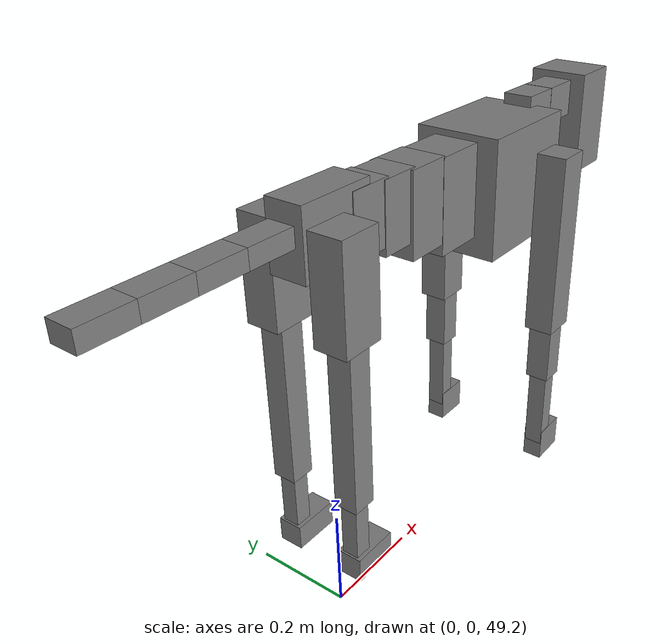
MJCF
<mujoco model="dog">

    <default>
        <joint armature="0.02" stiffness="1" damping="0.2" limited="true"/>
        <geom condim="3" friction="1 0.05 0.05" margin="0.01"/>
        <motor ctrllimited="true" ctrlrange="-1.0 1.0" forcelimited="true" gear="50"/>
    </default>

    <compiler inertiafromgeom="true" angle="radian"/>

    <option timestep="0.016" iterations="50" tolerance="1e-10" solver="Newton" jacobian="dense" cone="pyramidal"/>

    <size nconmax="20000" njmax="60000" nstack="5000000"/>
    <visual>
        <map force="0.1" zfar="30"/>
        <rgba haze="0.15 0.25 0.35 1"/>
        <quality shadowsize="2048"/>
        <global offwidth="800" offheight="800"/>
    </visual>

    <asset>
        <texture type="skybox" builtin="gradient" rgb1="0.3 0.5 0.7" rgb2="0 0 0" width="512" height="512"/>
        <texture name="texplane" type="2d" builtin="checker" rgb1=".2 .3 .4" rgb2=".1 0.15 0.2" width="512" height="512"
                 mark="cross" markrgb=".8 .8 .8"/>
        <texture name="texgeom" type="cube" builtin="flat" mark="cross" width="127" height="1278" rgb1="0.8 0.6 0.4"
                 rgb2="0.8 0.6 0.4" markrgb="1 1 1" random="0.01"/>

        <material name="matplane" reflectance="0.3" texture="texplane" texrepeat="1 1" texuniform="true"/>
        <material name="matgeom" texture="texgeom" texuniform="true" rgba="0.8 0.6 .4 1"/>
    </asset>

    <worldbody>
        <geom name="floor" pos="0 0 0" size="0 0 .25" type="plane" material="matplane" condim="3"/>

        <light directional="false" diffuse=".2 .2 .2" specular="0 0 0" pos="0 0 5" dir="0 0 -1" castshadow="false"/>
        <light mode="targetbodycom" target="torso" directional="false" diffuse=".8 .8 .8" specular="0.3 0.3 0.3"
               pos="0 0 4.0" dir="0 0 -1"/>

        <body name="root" pos="0 0 50">
            <freejoint name="root_1"/>
            <geom type="box" pos="0 0 -0.02" size="0.0774  0.0358  0.063" density="2030"/>

            <body name="spine1" pos="0.054 0 0">
                <joint name="spine1_y" axis="0 1 0" range="0 0.7" limited="true"/>
                <geom type="box" pos="0.02375 0 -0.03" size="0.04375  0.0375  0.05985" density="2030"/>

                <body name="spine2" pos="0.0612 0 0">
                    <joint name="spine2_y" axis="0 1 0" range="-0.15 0.15" limited="true"/>
                    <geom type="box" pos="0.03555  0  -0.04" size="0.04055  0.039  0.06615" density="2030"/>

                    <body name="spine3" pos="0.0730 0 0">
                        <joint name="spine3_y" axis="0 1 0" range="-0.15 0.15" limited="true"/>
                        <geom type="box" pos="0.03555  0  -0.057" size="0.04555  0.0445  0.081" density="2030"/>

                        <body name="spine4" pos="0.0780 0 0">
                            <joint name="spine4_y" axis="0 1 0" range="-0.15 0.15" limited="true"/>
                            <geom type="box" pos="0.05265  0  -0.07" size="0.05265  0.045  0.09135" density="2030"/>

                            <body name="torso" pos="0.1082 0 0">
                                <joint name="torso_y" axis="0 1 0" range="-0.15 0.15" limited="true"/>
                                <geom type="box" pos="0.11925  0  -0.085" size="0.11925  0.085  0.11745"
                                      density="2030"/>

                                <body name="neck1" pos="0.2160  0   0.0180">
                                    <joint name="neck1_y" axis="0 1 0" range="-1.2  -1" limited="true"/>
                                    <geom type="box" pos="0.0423  0  0" size="0.0423  0.03  0.036" density="2325"/>

                                    <body name="neck2" pos="0.0853  0  0">
                                        <joint name="neck2_y" axis="0 1 0" range="0.1  0" limited="true"/>
                                        <geom type="box" pos="0.0423  0  0" size="0.0423  0.03  0.036" density="2325"/>

                                        <body name="head" pos="0.0853  0  0">
                                            <joint name="head_y" axis="0 1 0" range="-0.3  -0.2" limited="true"/>
                                            <geom type="box" pos="0.0531  0  -0.055" size="0.0531  0.06  0.1044"
                                                  density="4030"/>

                                        </body>
                                    </body>
                                </body>

                                <body name="front_shoulder" pos="0.156  0   -0.0480">
                                    <joint name="front_shoulder_y" axis="0 1 0" range="-1 1.5" limited="true"/>
                                    <geom type="box" pos="0 0.13 -0.1583" size="0.0347  0.0297  0.1850" density="1158"/>
                                    <geom type="box" pos="0 -0.13 -0.1583" size="0.0347  0.0297  0.1850"
                                          density="1158"/>

                                    <body name="front_elbow" pos="0  0  -0.3166">
                                        <joint name="front_elbow_y" axis="0 1 0" range="-2 0" limited="true"/>
                                        <geom type="box" pos="0 0.13 -0.0732" size="0.0236  0.0242  0.0732"
                                              density="1081"/>
                                        <geom type="box" pos="0 -0.13 -0.0732" size="0.0236  0.0242  0.0732"
                                              density="1081"/>

                                        <body name="front_wrist" pos="0  0  -0.1464">
                                            <joint name="front_wrist_y" axis="0 1 0" range="-0.2 0" limited="true"/>
                                            <geom type="box" pos="0 0.13 -0.0781" size="0.0171  0.0189  0.0913"
                                                  density="1664"/>
                                            <geom type="box" pos="0 -0.13 -0.0781" size="0.0171  0.0189  0.0913"
                                                  density="1664"/>

                                            <body name="front_finger_end" pos="0  0  -0.1562">
                                                <joint name="front_finger_y" axis="0 1 0" range="-0.4 1"
                                                       limited="true"/>
                                                <geom type="box" pos="0.0200  0.13  -0.0182"
                                                      size="0.0367  0.0200  0.0332" density="1515"/>
                                                <geom type="box" pos="0.0200  -0.13  -0.0182"
                                                      size="0.0367  0.0200  0.0332" density="1515"/>

                                            </body>

                                        </body>
                                    </body>
                                </body>

                            </body>
                        </body>
                    </body>
                </body>
            </body>

            <body name="back_hip" pos="-0.03 0 -0.018">
                <joint name="back_hip_y" axis="0 1 0" range="-1.5 0.3" limited="true"/>
                <geom type="box" pos="0 0.07 -0.0750" size="0.0415  0.0325  0.0978" density="1154"/>
                <geom type="box" pos="0 -0.07 -0.0750" size="0.0415  0.0325  0.0978" density="1154"/>

                <body name="back_knee" pos="0  0  -0.1499">
                    <joint name="back_knee_y" axis="0 1 0" range="0 2.8" limited="true"/>
                    <geom type="box" pos="0 0.07 -0.1603" size="0.0233  0.0230  0.1759" density="1227"/>
                    <geom type="box" pos="0 -0.07 -0.1603" size="0.0233  0.0230  0.1759" density="1227"/>

                    <body name="back_ankle" pos="0  0  -0.3206">
                        <joint name="back_ankle_y" axis="0 1 0" range="-2.2 0" limited="true"/>
                        <geom type="box" pos="0 0.07 -0.0685" size="0.0163  0.0163  0.0798" density="1284"/>
                        <geom type="box" pos="0 -0.07 -0.0685" size="0.0163  0.0163  0.0798" density="1284"/>

                        <body name="back_toe_end" pos="0  0  -0.1371">
                            <joint name="back_toe_y" axis="0 1 0" range="-0.4 1" limited="true"/>
                            <geom type="box" pos="0.0242  0.07  -0.0089" size="0.0443  0.0242  0.0239" density="1515"/>
                            <geom type="box" pos="0.0242  -0.07  -0.0089" size="0.0443  0.0242  0.0239" density="1515"/>

                        </body>
                    </body>
                </body>
            </body>

            <body name="tail1" pos="-0.074 0 -0.006">
                <joint name="tail1_y" axis="0 1 0" range="-0.2 0.2" limited="true"/>
                <geom type="box" pos="-0.0536  0  0" size="0.045  0.025  0.0175" density="1587"/>

                <body name="tail2" pos="-0.09 0 0">
                    <joint name="tail2_y" axis="0 1 0" range="-0.2 0.2" limited="true"/>
                    <geom type="box" pos="-0.0536  0  0" size="0.045  0.025  0.0175" density="1587"/>

                    <body name="tail3" pos="-0.09 0 0">
                        <joint name="tail3_y" axis="0 1 0" range="-0.2 0.2" limited="true"/>
                        <geom type="box" pos="-0.0536  0  0" size="0.045  0.025  0.0175" density="1587"/>

                        <body name="tail4" pos="-0.09 0 0">
                            <joint name="tail4_y" axis="0 1 0" range="-0.2 0.2" limited="true"/>
                            <geom type="box" pos="-0.0536  0  0" size="0.045  0.025  0.0175" density="1587"/>

                        </body>
                    </body>
                </body>
            </body>
        </body>
    </worldbody>

    <actuator>
        <motor joint="spine1_y" forcerange="-150 150     "/>
        <motor joint="spine2_y" forcerange="-150 150     "/>
        <motor joint="spine3_y" forcerange="-150 150     "/>
        <motor joint="spine4_y" forcerange="-150 150     "/>
        <motor joint="torso_y" forcerange="-150 150     "/>
        <motor joint="neck1_y" forcerange="-100 100       "/>
        <motor joint="neck2_y" forcerange="-100 100       "/>
        <motor joint="head_y" forcerange="-150 150       "/>
        <motor joint="front_shoulder_y" forcerange="-180.51 117.49"/>
        <motor joint="front_elbow_y" forcerange="-138.88 136.77"/>
        <motor joint="front_wrist_y" forcerange="-79.63 71.95"/>
        <motor joint="front_finger_y" forcerange="-20.38 46.48"/>
        <motor joint="back_hip_y" forcerange="-355.15 278.58"/>
        <motor joint="back_knee_y" forcerange="-313.02 221.31"/>
        <motor joint="back_angle_y" forcerange="-78.58 81.89"/>
        <motor joint="back_toe_y" forcerange="-89.44 24.05"/>
        <motor joint="tail1_y" forcerange="-50 50     "/>
        <motor joint="tail2_y" forcerange="-50 50     "/>
        <motor joint="tail3_y" forcerange="-50 50     "/>
        <motor joint="tail4_y" forcerange="-50 50     "/>
    </actuator>
</mujoco>
